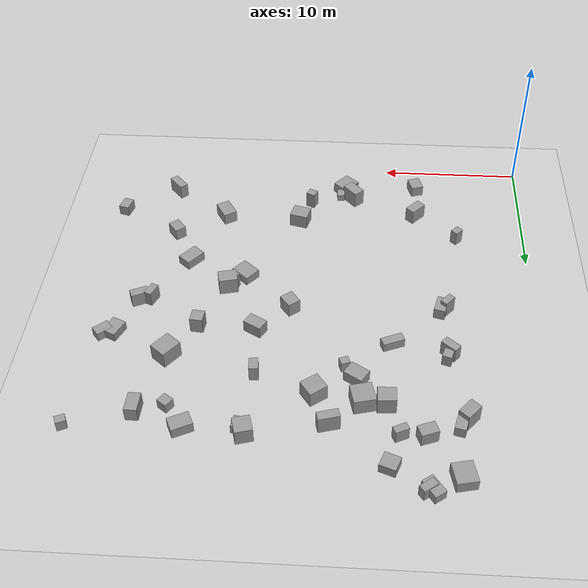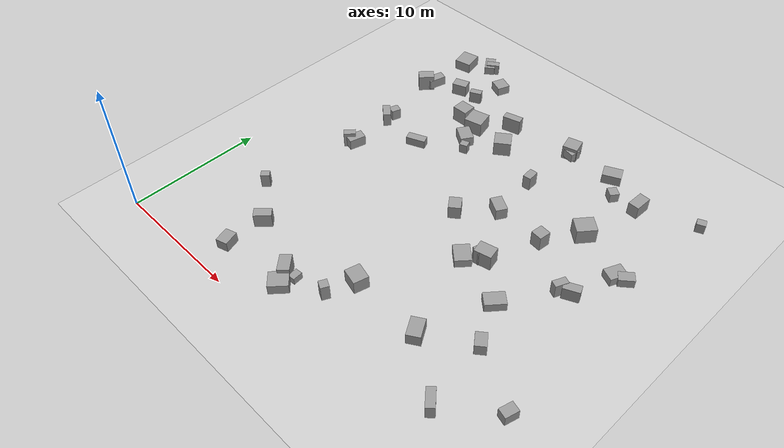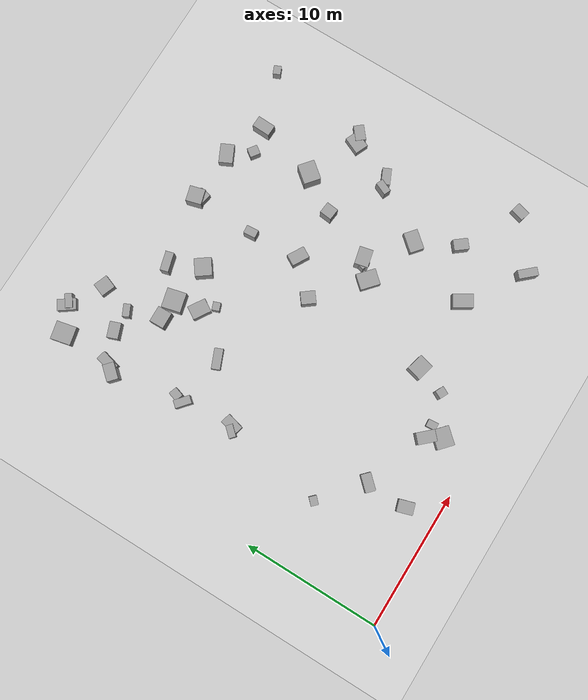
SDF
<sdf version="1.7">
 <world name="default">
  <model name="ground_plane">
   <static>1</static>
   <link name="link">
    <collision name="collision">
     <geometry><plane><normal>0 0 1</normal><size>100 100</size></plane></geometry>
     <surface><friction><ode><mu>100</mu><mu2>50</mu2></ode></friction></surface>
    </collision>
    <visual name="visual">
     <cast_shadows>0</cast_shadows>
     <geometry><plane><normal>0 0 1</normal><size>100 100</size></plane></geometry>
     <material>
      <script><uri>file://media/materials/scripts/gazebo.material</uri><name>Gazebo/Grey</name></script>
     </material>
    </visual>
   </link>
  </model>
  <model name="unit_box_2">
   <static>true</static>
   <pose>6.075183609601758 19.582829073267277 0.5 0 -0 326.4107492976476</pose>
   <link name="link">
    <inertial>
     <mass>1</mass>
     <inertia>
      <ixx>0.166667</ixx>
      <ixy>0</ixy>
      <ixz>0</ixz>
      <iyy>0.166667</iyy>
      <iyz>0</iyz>
      <izz>0.166667</izz>
     </inertia>
    </inertial>
    <collision name="collision">
     <geometry><box><size>0.6266694301505267 0.7147086828957209 0.8529961240803844</size></box></geometry>
    </collision>
    <visual name="visual">
     <geometry><box><size>0.6266694301505267 0.7147086828957209 0.8529961240803844</size></box></geometry>
     <material>
      <script><name>Gazebo/Grey</name><uri>file://media/materials/scripts/gazebo.material</uri></script>
     </material>
    </visual>
   </link>
  </model>
  <model name="unit_box_8">
   <static>true</static>
   <pose>13.526247484848206 25.072226725004846 0.5 0 -0 235.8880812467848</pose>
   <link name="link">
    <inertial>
     <mass>1</mass>
     <inertia>
      <ixx>0.166667</ixx>
      <ixy>0</ixy>
      <ixz>0</ixz>
      <iyy>0.166667</iyy>
      <iyz>0</iyz>
      <izz>0.166667</izz>
     </inertia>
    </inertial>
    <collision name="collision">
     <geometry><box><size>1.3976044286606641 0.6081127395378836 1.4346002221633043</size></box></geometry>
    </collision>
    <visual name="visual">
     <geometry><box><size>1.3976044286606641 0.6081127395378836 1.4346002221633043</size></box></geometry>
     <material>
      <script><name>Gazebo/Grey</name><uri>file://media/materials/scripts/gazebo.material</uri></script>
     </material>
    </visual>
   </link>
  </model>
  <model name="unit_box_19">
   <static>true</static>
   <pose>16.53977706462488 15.395428952619518 0.5 0 -0 292.82832951385666</pose>
   <link name="link">
    <inertial>
     <mass>1</mass>
     <inertia>
      <ixx>0.166667</ixx>
      <ixy>0</ixy>
      <ixz>0</ixz>
      <iyy>0.166667</iyy>
      <iyz>0</iyz>
      <izz>0.166667</izz>
     </inertia>
    </inertial>
    <collision name="collision">
     <geometry><box><size>0.9097543581399401 1.0486898294674742 1.058557427915837</size></box></geometry>
    </collision>
    <visual name="visual">
     <geometry><box><size>0.9097543581399401 1.0486898294674742 1.058557427915837</size></box></geometry>
     <material>
      <script><name>Gazebo/Grey</name><uri>file://media/materials/scripts/gazebo.material</uri></script>
     </material>
    </visual>
   </link>
  </model>
  <model name="unit_box_21">
   <static>true</static>
   <pose>26.06764423855877 3.290163727536026 0.5 0 -0 19.58643026135544</pose>
   <link name="link">
    <inertial>
     <mass>1</mass>
     <inertia>
      <ixx>0.166667</ixx>
      <ixy>0</ixy>
      <ixz>0</ixz>
      <iyy>0.166667</iyy>
      <iyz>0</iyz>
      <izz>0.166667</izz>
     </inertia>
    </inertial>
    <collision name="collision">
     <geometry><box><size>0.6197711131338078 1.4030050128848504 1.08956549549722</size></box></geometry>
    </collision>
    <visual name="visual">
     <geometry><box><size>0.6197711131338078 1.4030050128848504 1.08956549549722</size></box></geometry>
     <material>
      <script><name>Gazebo/Grey</name><uri>file://media/materials/scripts/gazebo.material</uri></script>
     </material>
    </visual>
   </link>
  </model>
  <model name="unit_box_27">
   <static>true</static>
   <pose>18.694011206480987 17.537227984825684 0.5 0 -0 156.56091539982643</pose>
   <link name="link">
    <inertial>
     <mass>1</mass>
     <inertia>
      <ixx>0.166667</ixx>
      <ixy>0</ixy>
      <ixz>0</ixz>
      <iyy>0.166667</iyy>
      <iyz>0</iyz>
      <izz>0.166667</izz>
     </inertia>
    </inertial>
    <collision name="collision">
     <geometry><box><size>1.3051033232458376 0.8619676094807414 0.9028728992414216</size></box></geometry>
    </collision>
    <visual name="visual">
     <geometry><box><size>1.3051033232458376 0.8619676094807414 0.9028728992414216</size></box></geometry>
     <material>
      <script><name>Gazebo/Grey</name><uri>file://media/materials/scripts/gazebo.material</uri></script>
     </material>
    </visual>
   </link>
  </model>
  <model name="unit_box_28">
   <static>true</static>
   <pose>7.335855545737282 29.440695560788072 0.5 0 -0 198.54745181263667</pose>
   <link name="link">
    <inertial>
     <mass>1</mass>
     <inertia>
      <ixx>0.166667</ixx>
      <ixy>0</ixy>
      <ixz>0</ixz>
      <iyy>0.166667</iyy>
      <iyz>0</iyz>
      <izz>0.166667</izz>
     </inertia>
    </inertial>
    <collision name="collision">
     <geometry><box><size>0.8034991458267305 1.3305237800313559 0.652747012599675</size></box></geometry>
    </collision>
    <visual name="visual">
     <geometry><box><size>0.8034991458267305 1.3305237800313559 0.652747012599675</size></box></geometry>
     <material>
      <script><name>Gazebo/Grey</name><uri>file://media/materials/scripts/gazebo.material</uri></script>
     </material>
    </visual>
   </link>
  </model>
  <model name="unit_box_37">
   <static>true</static>
   <pose>25.470562061039942 24.607845796192144 0.5 0 -0 240.29601368140607</pose>
   <link name="link">
    <inertial>
     <mass>1</mass>
     <inertia>
      <ixx>0.166667</ixx>
      <ixy>0</ixy>
      <ixz>0</ixz>
      <iyy>0.166667</iyy>
      <iyz>0</iyz>
      <izz>0.166667</izz>
     </inertia>
    </inertial>
    <collision name="collision">
     <geometry><box><size>1.344375268644443 0.8213663942201596 1.02014301659462</size></box></geometry>
    </collision>
    <visual name="visual">
     <geometry><box><size>1.344375268644443 0.8213663942201596 1.02014301659462</size></box></geometry>
     <material>
      <script><name>Gazebo/Grey</name><uri>file://media/materials/scripts/gazebo.material</uri></script>
     </material>
    </visual>
   </link>
  </model>
  <model name="unit_box_39">
   <static>true</static>
   <pose>16.438265275340584 6.3050185560217 0.5 0 -0 172.53721843498602</pose>
   <link name="link">
    <inertial>
     <mass>1</mass>
     <inertia>
      <ixx>0.166667</ixx>
      <ixy>0</ixy>
      <ixz>0</ixz>
      <iyy>0.166667</iyy>
      <iyz>0</iyz>
      <izz>0.166667</izz>
     </inertia>
    </inertial>
    <collision name="collision">
     <geometry><box><size>1.2911400543631473 1.1213946423509804 1.045349994574835</size></box></geometry>
    </collision>
    <visual name="visual">
     <geometry><box><size>1.2911400543631473 1.1213946423509804 1.045349994574835</size></box></geometry>
     <material>
      <script><name>Gazebo/Grey</name><uri>file://media/materials/scripts/gazebo.material</uri></script>
     </material>
    </visual>
   </link>
  </model>
  <model name="unit_box_42">
   <static>true</static>
   <pose>21.00234367478032 13.590694557570458 0.5 0 -0 345.80303984147434</pose>
   <link name="link">
    <inertial>
     <mass>1</mass>
     <inertia>
      <ixx>0.166667</ixx>
      <ixy>0</ixy>
      <ixz>0</ixz>
      <iyy>0.166667</iyy>
      <iyz>0</iyz>
      <izz>0.166667</izz>
     </inertia>
    </inertial>
    <collision name="collision">
     <geometry><box><size>1.2975623628611703 0.9901267232153436 1.3873004660296702</size></box></geometry>
    </collision>
    <visual name="visual">
     <geometry><box><size>1.2975623628611703 0.9901267232153436 1.3873004660296702</size></box></geometry>
     <material>
      <script><name>Gazebo/Grey</name><uri>file://media/materials/scripts/gazebo.material</uri></script>
     </material>
    </visual>
   </link>
  </model>
  <model name="unit_box_44">
   <static>true</static>
   <pose>22.556486633813087 17.378842252137304 0.5 0 -0 215.09612472012793</pose>
   <link name="link">
    <inertial>
     <mass>1</mass>
     <inertia>
      <ixx>0.166667</ixx>
      <ixy>0</ixy>
      <ixz>0</ixz>
      <iyy>0.166667</iyy>
      <iyz>0</iyz>
      <izz>0.166667</izz>
     </inertia>
    </inertial>
    <collision name="collision">
     <geometry><box><size>0.9052570733445651 0.8579701126151802 1.2587844239508659</size></box></geometry>
    </collision>
    <visual name="visual">
     <geometry><box><size>0.9052570733445651 0.8579701126151802 1.2587844239508659</size></box></geometry>
     <material>
      <script><name>Gazebo/Grey</name><uri>file://media/materials/scripts/gazebo.material</uri></script>
     </material>
    </visual>
   </link>
  </model>
  <model name="unit_box_46">
   <static>true</static>
   <pose>20.621133301253238 13.359679039255852 0.5 0 -0 51.564276295134206</pose>
   <link name="link">
    <inertial>
     <mass>1</mass>
     <inertia>
      <ixx>0.166667</ixx>
      <ixy>0</ixy>
      <ixz>0</ixz>
      <iyy>0.166667</iyy>
      <iyz>0</iyz>
      <izz>0.166667</izz>
     </inertia>
    </inertial>
    <collision name="collision">
     <geometry><box><size>0.5519025088118472 0.6839269735951289 1.197632844459171</size></box></geometry>
    </collision>
    <visual name="visual">
     <geometry><box><size>0.5519025088118472 0.6839269735951289 1.197632844459171</size></box></geometry>
     <material>
      <script><name>Gazebo/Grey</name><uri>file://media/materials/scripts/gazebo.material</uri></script>
     </material>
    </visual>
   </link>
  </model>
  <model name="unit_box_47">
   <static>true</static>
   <pose>5.556567994245555 28.48252787007317 0.5 0 -0 118.02403618140033</pose>
   <link name="link">
    <inertial>
     <mass>1</mass>
     <inertia>
      <ixx>0.166667</ixx>
      <ixy>0</ixy>
      <ixz>0</ixz>
      <iyy>0.166667</iyy>
      <iyz>0</iyz>
      <izz>0.166667</izz>
     </inertia>
    </inertial>
    <collision name="collision">
     <geometry><box><size>1.4624417969835561 1.3223446347227843 0.8082423349898079</size></box></geometry>
    </collision>
    <visual name="visual">
     <geometry><box><size>1.4624417969835561 1.3223446347227843 0.8082423349898079</size></box></geometry>
     <material>
      <script><name>Gazebo/Grey</name><uri>file://media/materials/scripts/gazebo.material</uri></script>
     </material>
    </visual>
   </link>
  </model>
  <model name="unit_box_48">
   <static>true</static>
   <pose>18.606294316136044 25.97861340103325 0.5 0 -0 67.81229950261451</pose>
   <link name="link">
    <inertial>
     <mass>1</mass>
     <inertia>
      <ixx>0.166667</ixx>
      <ixy>0</ixy>
      <ixz>0</ixz>
      <iyy>0.166667</iyy>
      <iyz>0</iyz>
      <izz>0.166667</izz>
     </inertia>
    </inertial>
    <collision name="collision">
     <geometry><box><size>1.1360610954181491 1.129243081194229 1.2102592617413017</size></box></geometry>
    </collision>
    <visual name="visual">
     <geometry><box><size>1.1360610954181491 1.129243081194229 1.2102592617413017</size></box></geometry>
     <material>
      <script><name>Gazebo/Grey</name><uri>file://media/materials/scripts/gazebo.material</uri></script>
     </material>
    </visual>
   </link>
  </model>
  <model name="unit_box_52">
   <static>true</static>
   <pose>27.978531176537942 18.36319179525745 0.5 0 -0 107.96689318713497</pose>
   <link name="link">
    <inertial>
     <mass>1</mass>
     <inertia>
      <ixx>0.166667</ixx>
      <ixy>0</ixy>
      <ixz>0</ixz>
      <iyy>0.166667</iyy>
      <iyz>0</iyz>
      <izz>0.166667</izz>
     </inertia>
    </inertial>
    <collision name="collision">
     <geometry><box><size>1.2970123926587727 0.9932873523759735 0.6435696410689539</size></box></geometry>
    </collision>
    <visual name="visual">
     <geometry><box><size>1.2970123926587727 0.9932873523759735 0.6435696410689539</size></box></geometry>
     <material>
      <script><name>Gazebo/Grey</name><uri>file://media/materials/scripts/gazebo.material</uri></script>
     </material>
    </visual>
   </link>
  </model>
  <model name="unit_box_55">
   <static>true</static>
   <pose>24.22568948439428 20.044661358361317 0.5 0 -0 22.88305894017677</pose>
   <link name="link">
    <inertial>
     <mass>1</mass>
     <inertia>
      <ixx>0.166667</ixx>
      <ixy>0</ixy>
      <ixz>0</ixz>
      <iyy>0.166667</iyy>
      <iyz>0</iyz>
      <izz>0.166667</izz>
     </inertia>
    </inertial>
    <collision name="collision">
     <geometry><box><size>1.4568319885254337 1.241812268292108 1.3092068896481828</size></box></geometry>
    </collision>
    <visual name="visual">
     <geometry><box><size>1.4568319885254337 1.241812268292108 1.3092068896481828</size></box></geometry>
     <material>
      <script><name>Gazebo/Grey</name><uri>file://media/materials/scripts/gazebo.material</uri></script>
     </material>
    </visual>
   </link>
  </model>
  <model name="unit_box_58">
   <static>true</static>
   <pose>4.909568699743126 7.80604900535711 0.5 0 -0 76.1902532584364</pose>
   <link name="link">
    <inertial>
     <mass>1</mass>
     <inertia>
      <ixx>0.166667</ixx>
      <ixy>0</ixy>
      <ixz>0</ixz>
      <iyy>0.166667</iyy>
      <iyz>0</iyz>
      <izz>0.166667</izz>
     </inertia>
    </inertial>
    <collision name="collision">
     <geometry><box><size>0.649773561496556 0.5390885309124063 1.094235588867663</size></box></geometry>
    </collision>
    <visual name="visual">
     <geometry><box><size>0.649773561496556 0.5390885309124063 1.094235588867663</size></box></geometry>
     <material>
      <script><name>Gazebo/Grey</name><uri>file://media/materials/scripts/gazebo.material</uri></script>
     </material>
    </visual>
   </link>
  </model>
  <model name="unit_box_59">
   <static>true</static>
   <pose>15.692025174586803 4.190637754242118 0.5 0 -0 293.28560197946393</pose>
   <link name="link">
    <inertial>
     <mass>1</mass>
     <inertia>
      <ixx>0.166667</ixx>
      <ixy>0</ixy>
      <ixz>0</ixz>
      <iyy>0.166667</iyy>
      <iyz>0</iyz>
      <izz>0.166667</izz>
     </inertia>
    </inertial>
    <collision name="collision">
     <geometry><box><size>0.6069787007011861 0.6516881781433638 1.3678282830183588</size></box></geometry>
    </collision>
    <visual name="visual">
     <geometry><box><size>0.6069787007011861 0.6516881781433638 1.3678282830183588</size></box></geometry>
     <material>
      <script><name>Gazebo/Grey</name><uri>file://media/materials/scripts/gazebo.material</uri></script>
     </material>
    </visual>
   </link>
  </model>
  <model name="unit_box_63">
   <static>true</static>
   <pose>7.806829698224661 2.3042562962078392 0.5 0 -0 163.6643687447556</pose>
   <link name="link">
    <inertial>
     <mass>1</mass>
     <inertia>
      <ixx>0.166667</ixx>
      <ixy>0</ixy>
      <ixz>0</ixz>
      <iyy>0.166667</iyy>
      <iyz>0</iyz>
      <izz>0.166667</izz>
     </inertia>
    </inertial>
    <collision name="collision">
     <geometry><box><size>0.8742000349347955 1.1291085135058703 0.8023658930573554</size></box></geometry>
    </collision>
    <visual name="visual">
     <geometry><box><size>0.8742000349347955 1.1291085135058703 0.8023658930573554</size></box></geometry>
     <material>
      <script><name>Gazebo/Grey</name><uri>file://media/materials/scripts/gazebo.material</uri></script>
     </material>
    </visual>
   </link>
  </model>
  <model name="unit_box_66">
   <static>true</static>
   <pose>19.876373113739263 12.538316822582296 0.5 0 -0 173.6412267765037</pose>
   <link name="link">
    <inertial>
     <mass>1</mass>
     <inertia>
      <ixx>0.166667</ixx>
      <ixy>0</ixy>
      <ixz>0</ixz>
      <iyy>0.166667</iyy>
      <iyz>0</iyz>
      <izz>0.166667</izz>
     </inertia>
    </inertial>
    <collision name="collision">
     <geometry><box><size>1.1748063741884576 1.436795250597953 0.6505656093072076</size></box></geometry>
    </collision>
    <visual name="visual">
     <geometry><box><size>1.1748063741884576 1.436795250597953 0.6505656093072076</size></box></geometry>
     <material>
      <script><name>Gazebo/Grey</name><uri>file://media/materials/scripts/gazebo.material</uri></script>
     </material>
    </visual>
   </link>
  </model>
  <model name="unit_box_68">
   <static>true</static>
   <pose>9.168438073694865 25.641140558621657 0.5 0 -0 160.6702565570846</pose>
   <link name="link">
    <inertial>
     <mass>1</mass>
     <inertia>
      <ixx>0.166667</ixx>
      <ixy>0</ixy>
      <ixz>0</ixz>
      <iyy>0.166667</iyy>
      <iyz>0</iyz>
      <izz>0.166667</izz>
     </inertia>
    </inertial>
    <collision name="collision">
     <geometry><box><size>0.9136162828608444 0.5092848872562229 0.9583333695756887</size></box></geometry>
    </collision>
    <visual name="visual">
     <geometry><box><size>0.9136162828608444 0.5092848872562229 0.9583333695756887</size></box></geometry>
     <material>
      <script><name>Gazebo/Grey</name><uri>file://media/materials/scripts/gazebo.material</uri></script>
     </material>
    </visual>
   </link>
  </model>
  <model name="unit_box_72">
   <static>true</static>
   <pose>7.870176105929808 5.313361313212241 0.5 0 -0 311.8350475576721</pose>
   <link name="link">
    <inertial>
     <mass>1</mass>
     <inertia>
      <ixx>0.166667</ixx>
      <ixy>0</ixy>
      <ixz>0</ixz>
      <iyy>0.166667</iyy>
      <iyz>0</iyz>
      <izz>0.166667</izz>
     </inertia>
    </inertial>
    <collision name="collision">
     <geometry><box><size>1.2782323731909977 0.7210206295488444 1.133837877895704</size></box></geometry>
    </collision>
    <visual name="visual">
     <geometry><box><size>1.2782323731909977 0.7210206295488444 1.133837877895704</size></box></geometry>
     <material>
      <script><name>Gazebo/Grey</name><uri>file://media/materials/scripts/gazebo.material</uri></script>
     </material>
    </visual>
   </link>
  </model>
  <model name="unit_box_74">
   <static>true</static>
   <pose>12.550211492582847 3.5400926782987483 0.5 0 -0 248.92730742739886</pose>
   <link name="link">
    <inertial>
     <mass>1</mass>
     <inertia>
      <ixx>0.166667</ixx>
      <ixy>0</ixy>
      <ixz>0</ixz>
      <iyy>0.166667</iyy>
      <iyz>0</iyz>
      <izz>0.166667</izz>
     </inertia>
    </inertial>
    <collision name="collision">
     <geometry><box><size>0.8389021791973853 1.3421751105045296 1.3646324285194171</size></box></geometry>
    </collision>
    <visual name="visual">
     <geometry><box><size>0.8389021791973853 1.3421751105045296 1.3646324285194171</size></box></geometry>
     <material>
      <script><name>Gazebo/Grey</name><uri>file://media/materials/scripts/gazebo.material</uri></script>
     </material>
    </visual>
   </link>
  </model>
  <model name="unit_box_83">
   <static>true</static>
   <pose>23.546734505923567 24.254876355479958 0.5 0 -0 117.18658827138174</pose>
   <link name="link">
    <inertial>
     <mass>1</mass>
     <inertia>
      <ixx>0.166667</ixx>
      <ixy>0</ixy>
      <ixz>0</ixz>
      <iyy>0.166667</iyy>
      <iyz>0</iyz>
      <izz>0.166667</izz>
     </inertia>
    </inertial>
    <collision name="collision">
     <geometry><box><size>0.6875270126272337 0.7481586872271153 0.7316958038379996</size></box></geometry>
    </collision>
    <visual name="visual">
     <geometry><box><size>0.6875270126272337 0.7481586872271153 0.7316958038379996</size></box></geometry>
     <material>
      <script><name>Gazebo/Grey</name><uri>file://media/materials/scripts/gazebo.material</uri></script>
     </material>
    </visual>
   </link>
  </model>
  <model name="unit_box_85">
   <static>true</static>
   <pose>5.4629197116767045 24.796719150428935 0.5 0 -0 335.8943174686914</pose>
   <link name="link">
    <inertial>
     <mass>1</mass>
     <inertia>
      <ixx>0.166667</ixx>
      <ixy>0</ixy>
      <ixz>0</ixz>
      <iyy>0.166667</iyy>
      <iyz>0</iyz>
      <izz>0.166667</izz>
     </inertia>
    </inertial>
    <collision name="collision">
     <geometry><box><size>0.7141914500547789 1.3961964106156284 0.7417155893022127</size></box></geometry>
    </collision>
    <visual name="visual">
     <geometry><box><size>0.7141914500547789 1.3961964106156284 0.7417155893022127</size></box></geometry>
     <material>
      <script><name>Gazebo/Grey</name><uri>file://media/materials/scripts/gazebo.material</uri></script>
     </material>
    </visual>
   </link>
  </model>
  <model name="unit_box_87">
   <static>true</static>
   <pose>12.683645403967681 20.507631737791044 0.5 0 -0 275.2442569944256</pose>
   <link name="link">
    <inertial>
     <mass>1</mass>
     <inertia>
      <ixx>0.166667</ixx>
      <ixy>0</ixy>
      <ixz>0</ixz>
      <iyy>0.166667</iyy>
      <iyz>0</iyz>
      <izz>0.166667</izz>
     </inertia>
    </inertial>
    <collision name="collision">
     <geometry><box><size>0.5430039512211714 0.6048291285440465 0.7673195144215575</size></box></geometry>
    </collision>
    <visual name="visual">
     <geometry><box><size>0.5430039512211714 0.6048291285440465 0.7673195144215575</size></box></geometry>
     <material>
      <script><name>Gazebo/Grey</name><uri>file://media/materials/scripts/gazebo.material</uri></script>
     </material>
    </visual>
   </link>
  </model>
  <model name="unit_box_89">
   <static>true</static>
   <pose>13.132192595485279 2.5319206112829704 0.5 0 -0 95.09129952546573</pose>
   <link name="link">
    <inertial>
     <mass>1</mass>
     <inertia>
      <ixx>0.166667</ixx>
      <ixy>0</ixy>
      <ixz>0</ixz>
      <iyy>0.166667</iyy>
      <iyz>0</iyz>
      <izz>0.166667</izz>
     </inertia>
    </inertial>
    <collision name="collision">
     <geometry><box><size>1.3989676282034784 1.2428125538502477 0.7582398263198261</size></box></geometry>
    </collision>
    <visual name="visual">
     <geometry><box><size>1.3989676282034784 1.2428125538502477 0.7582398263198261</size></box></geometry>
     <material>
      <script><name>Gazebo/Grey</name><uri>file://media/materials/scripts/gazebo.material</uri></script>
     </material>
    </visual>
   </link>
  </model>
  <model name="unit_box_107">
   <static>true</static>
   <pose>11.896602555117866 21.408017880659344 0.5 0 -0 246.0533327683534</pose>
   <link name="link">
    <inertial>
     <mass>1</mass>
     <inertia>
      <ixx>0.166667</ixx>
      <ixy>0</ixy>
      <ixz>0</ixz>
      <iyy>0.166667</iyy>
      <iyz>0</iyz>
      <izz>0.166667</izz>
     </inertia>
    </inertial>
    <collision name="collision">
     <geometry><box><size>1.0066742597315261 1.3410550901812412 0.7943802548569558</size></box></geometry>
    </collision>
    <visual name="visual">
     <geometry><box><size>1.0066742597315261 1.3410550901812412 0.7943802548569558</size></box></geometry>
     <material>
      <script><name>Gazebo/Grey</name><uri>file://media/materials/scripts/gazebo.material</uri></script>
     </material>
    </visual>
   </link>
  </model>
  <model name="unit_box_109">
   <static>true</static>
   <pose>7.632319863472432 29.438869301346628 0.5 0 -0 292.79471959877543</pose>
   <link name="link">
    <inertial>
     <mass>1</mass>
     <inertia>
      <ixx>0.166667</ixx>
      <ixy>0</ixy>
      <ixz>0</ixz>
      <iyy>0.166667</iyy>
      <iyz>0</iyz>
      <izz>0.166667</izz>
     </inertia>
    </inertial>
    <collision name="collision">
     <geometry><box><size>1.0206820450920233 0.5225910596196522 0.8746203777420581</size></box></geometry>
    </collision>
    <visual name="visual">
     <geometry><box><size>1.0206820450920233 0.5225910596196522 0.8746203777420581</size></box></geometry>
     <material>
      <script><name>Gazebo/Grey</name><uri>file://media/materials/scripts/gazebo.material</uri></script>
     </material>
    </visual>
   </link>
  </model>
  <model name="unit_box_112">
   <static>true</static>
   <pose>29.656487446707928 5.9010496040593665 0.5 0 -0 115.97595919735761</pose>
   <link name="link">
    <inertial>
     <mass>1</mass>
     <inertia>
      <ixx>0.166667</ixx>
      <ixy>0</ixy>
      <ixz>0</ixz>
      <iyy>0.166667</iyy>
      <iyz>0</iyz>
      <izz>0.166667</izz>
     </inertia>
    </inertial>
    <collision name="collision">
     <geometry><box><size>0.7307085256808161 0.9948362396580696 0.7853850949954407</size></box></geometry>
    </collision>
    <visual name="visual">
     <geometry><box><size>0.7307085256808161 0.9948362396580696 0.7853850949954407</size></box></geometry>
     <material>
      <script><name>Gazebo/Grey</name><uri>file://media/materials/scripts/gazebo.material</uri></script>
     </material>
    </visual>
   </link>
  </model>
  <model name="unit_box_113">
   <static>true</static>
   <pose>11.486036195296485 23.203189929999944 0.5 0 -0 278.271588610162</pose>
   <link name="link">
    <inertial>
     <mass>1</mass>
     <inertia>
      <ixx>0.166667</ixx>
      <ixy>0</ixy>
      <ixz>0</ixz>
      <iyy>0.166667</iyy>
      <iyz>0</iyz>
      <izz>0.166667</izz>
     </inertia>
    </inertial>
    <collision name="collision">
     <geometry><box><size>1.3932249065703974 1.4167858023454192 1.2041795451049215</size></box></geometry>
    </collision>
    <visual name="visual">
     <geometry><box><size>1.3932249065703974 1.4167858023454192 1.2041795451049215</size></box></geometry>
     <material>
      <script><name>Gazebo/Grey</name><uri>file://media/materials/scripts/gazebo.material</uri></script>
     </material>
    </visual>
   </link>
  </model>
  <model name="unit_box_125">
   <static>true</static>
   <pose>22.01560813307247 6.133653222518596 0.5 0 -0 229.8847880018155</pose>
   <link name="link">
    <inertial>
     <mass>1</mass>
     <inertia>
      <ixx>0.166667</ixx>
      <ixy>0</ixy>
      <ixz>0</ixz>
      <iyy>0.166667</iyy>
      <iyz>0</iyz>
      <izz>0.166667</izz>
     </inertia>
    </inertial>
    <collision name="collision">
     <geometry><box><size>0.9825185737126813 1.4477548267670501 0.8868998208863914</size></box></geometry>
    </collision>
    <visual name="visual">
     <geometry><box><size>0.9825185737126813 1.4477548267670501 0.8868998208863914</size></box></geometry>
     <material>
      <script><name>Gazebo/Grey</name><uri>file://media/materials/scripts/gazebo.material</uri></script>
     </material>
    </visual>
   </link>
  </model>
  <model name="unit_box_128">
   <static>true</static>
   <pose>18.836117199367166 25.65467049783127 0.5 0 -0 301.4114053986779</pose>
   <link name="link">
    <inertial>
     <mass>1</mass>
     <inertia>
      <ixx>0.166667</ixx>
      <ixy>0</ixy>
      <ixz>0</ixz>
      <iyy>0.166667</iyy>
      <iyz>0</iyz>
      <izz>0.166667</izz>
     </inertia>
    </inertial>
    <collision name="collision">
     <geometry><box><size>0.875105563854358 0.8437633055790543 0.6802295545031973</size></box></geometry>
    </collision>
    <visual name="visual">
     <geometry><box><size>0.875105563854358 0.8437633055790543 0.6802295545031973</size></box></geometry>
     <material>
      <script><name>Gazebo/Grey</name><uri>file://media/materials/scripts/gazebo.material</uri></script>
     </material>
    </visual>
   </link>
  </model>
  <model name="unit_box_130">
   <static>true</static>
   <pose>7.550567682638743 25.611670640487645 0.5 0 -0 295.6708477054124</pose>
   <link name="link">
    <inertial>
     <mass>1</mass>
     <inertia>
      <ixx>0.166667</ixx>
      <ixy>0</ixy>
      <ixz>0</ixz>
      <iyy>0.166667</iyy>
      <iyz>0</iyz>
      <izz>0.166667</izz>
     </inertia>
    </inertial>
    <collision name="collision">
     <geometry><box><size>1.1482430511585462 0.8051089116418404 0.9612190299499431</size></box></geometry>
    </collision>
    <visual name="visual">
     <geometry><box><size>1.1482430511585462 0.8051089116418404 0.9612190299499431</size></box></geometry>
     <material>
      <script><name>Gazebo/Grey</name><uri>file://media/materials/scripts/gazebo.material</uri></script>
     </material>
    </visual>
   </link>
  </model>
  <model name="unit_box_131">
   <static>true</static>
   <pose>5.917528516432675 15.020304452192846 0.5 0 -0 313.42822900021173</pose>
   <link name="link">
    <inertial>
     <mass>1</mass>
     <inertia>
      <ixx>0.166667</ixx>
      <ixy>0</ixy>
      <ixz>0</ixz>
      <iyy>0.166667</iyy>
      <iyz>0</iyz>
      <izz>0.166667</izz>
     </inertia>
    </inertial>
    <collision name="collision">
     <geometry><box><size>0.5000157201728738 0.9028638048602278 1.3932904022124322</size></box></geometry>
    </collision>
    <visual name="visual">
     <geometry><box><size>0.5000157201728738 0.9028638048602278 1.3932904022124322</size></box></geometry>
     <material>
      <script><name>Gazebo/Grey</name><uri>file://media/materials/scripts/gazebo.material</uri></script>
     </material>
    </visual>
   </link>
  </model>
  <model name="unit_box_139">
   <static>true</static>
   <pose>6.330433135278561 15.224635286154978 0.5 0 -0 317.0468038294192</pose>
   <link name="link">
    <inertial>
     <mass>1</mass>
     <inertia>
      <ixx>0.166667</ixx>
      <ixy>0</ixy>
      <ixz>0</ixz>
      <iyy>0.166667</iyy>
      <iyz>0</iyz>
      <izz>0.166667</izz>
     </inertia>
    </inertial>
    <collision name="collision">
     <geometry><box><size>0.7762704948614222 1.270986643665274 0.8129457318329306</size></box></geometry>
    </collision>
    <visual name="visual">
     <geometry><box><size>0.7762704948614222 1.270986643665274 0.8129457318329306</size></box></geometry>
     <material>
      <script><name>Gazebo/Grey</name><uri>file://media/materials/scripts/gazebo.material</uri></script>
     </material>
    </visual>
   </link>
  </model>
  <model name="unit_box_142">
   <static>true</static>
   <pose>26.869148401194572 15.255166039398006 0.5 0 -0 287.88921963538047</pose>
   <link name="link">
    <inertial>
     <mass>1</mass>
     <inertia>
      <ixx>0.166667</ixx>
      <ixy>0</ixy>
      <ixz>0</ixz>
      <iyy>0.166667</iyy>
      <iyz>0</iyz>
      <izz>0.166667</izz>
     </inertia>
    </inertial>
    <collision name="collision">
     <geometry><box><size>0.6333349245550113 1.2090756273450847 1.0199392845840778</size></box></geometry>
    </collision>
    <visual name="visual">
     <geometry><box><size>0.6333349245550113 1.2090756273450847 1.0199392845840778</size></box></geometry>
     <material>
      <script><name>Gazebo/Grey</name><uri>file://media/materials/scripts/gazebo.material</uri></script>
     </material>
    </visual>
   </link>
  </model>
  <model name="unit_box_144">
   <static>true</static>
   <pose>23.899415188577343 11.219844655473864 0.5 0 -0 263.19148986507054</pose>
   <link name="link">
    <inertial>
     <mass>1</mass>
     <inertia>
      <ixx>0.166667</ixx>
      <ixy>0</ixy>
      <ixz>0</ixz>
      <iyy>0.166667</iyy>
      <iyz>0</iyz>
      <izz>0.166667</izz>
     </inertia>
    </inertial>
    <collision name="collision">
     <geometry><box><size>1.018915573938532 1.474167889735236 0.671039882088707</size></box></geometry>
    </collision>
    <visual name="visual">
     <geometry><box><size>1.018915573938532 1.474167889735236 0.671039882088707</size></box></geometry>
     <material>
      <script><name>Gazebo/Grey</name><uri>file://media/materials/scripts/gazebo.material</uri></script>
     </material>
    </visual>
   </link>
  </model>
  <model name="unit_box_145">
   <static>true</static>
   <pose>29.590126114767003 26.040796069744864 0.5 0 -0 341.2717016155773</pose>
   <link name="link">
    <inertial>
     <mass>1</mass>
     <inertia>
      <ixx>0.166667</ixx>
      <ixy>0</ixy>
      <ixz>0</ixz>
      <iyy>0.166667</iyy>
      <iyz>0</iyz>
      <izz>0.166667</izz>
     </inertia>
    </inertial>
    <collision name="collision">
     <geometry><box><size>0.559253368037819 0.6517600848146741 0.7604259447626311</size></box></geometry>
    </collision>
    <visual name="visual">
     <geometry><box><size>0.559253368037819 0.6517600848146741 0.7604259447626311</size></box></geometry>
     <material>
      <script><name>Gazebo/Grey</name><uri>file://media/materials/scripts/gazebo.material</uri></script>
     </material>
    </visual>
   </link>
  </model>
  <model name="unit_box_152">
   <static>true</static>
   <pose>9.812867933298712 27.931194790072517 0.5 0 -0 337.3571876032492</pose>
   <link name="link">
    <inertial>
     <mass>1</mass>
     <inertia>
      <ixx>0.166667</ixx>
      <ixy>0</ixy>
      <ixz>0</ixz>
      <iyy>0.166667</iyy>
      <iyz>0</iyz>
      <izz>0.166667</izz>
     </inertia>
    </inertial>
    <collision name="collision">
     <geometry><box><size>1.0066572786173553 1.0712401626691173 0.6888949006507155</size></box></geometry>
    </collision>
    <visual name="visual">
     <geometry><box><size>1.0066572786173553 1.0712401626691173 0.6888949006507155</size></box></geometry>
     <material>
      <script><name>Gazebo/Grey</name><uri>file://media/materials/scripts/gazebo.material</uri></script>
     </material>
    </visual>
   </link>
  </model>
  <model name="unit_box_157">
   <static>true</static>
   <pose>28.698837066879264 18.550113613903775 0.5 0 -0 336.8437599966882</pose>
   <link name="link">
    <inertial>
     <mass>1</mass>
     <inertia>
      <ixx>0.166667</ixx>
      <ixy>0</ixy>
      <ixz>0</ixz>
      <iyy>0.166667</iyy>
      <iyz>0</iyz>
      <izz>0.166667</izz>
     </inertia>
    </inertial>
    <collision name="collision">
     <geometry><box><size>1.1145328749815269 0.7487534302867812 0.6584356047786017</size></box></geometry>
    </collision>
    <visual name="visual">
     <geometry><box><size>1.1145328749815269 0.7487534302867812 0.6584356047786017</size></box></geometry>
     <material>
      <script><name>Gazebo/Grey</name><uri>file://media/materials/scripts/gazebo.material</uri></script>
     </material>
    </visual>
   </link>
  </model>
  <model name="unit_box_159">
   <static>true</static>
   <pose>5.002460557338331 24.176450906706066 0.5 0 -0 14.982075310079882</pose>
   <link name="link">
    <inertial>
     <mass>1</mass>
     <inertia>
      <ixx>0.166667</ixx>
      <ixy>0</ixy>
      <ixz>0</ixz>
      <iyy>0.166667</iyy>
      <iyz>0</iyz>
      <izz>0.166667</izz>
     </inertia>
    </inertial>
    <collision name="collision">
     <geometry><box><size>0.8183347995863939 1.2171246823680364 1.467932431268916</size></box></geometry>
    </collision>
    <visual name="visual">
     <geometry><box><size>0.8183347995863939 1.2171246823680364 1.467932431268916</size></box></geometry>
     <material>
      <script><name>Gazebo/Grey</name><uri>file://media/materials/scripts/gazebo.material</uri></script>
     </material>
    </visual>
   </link>
  </model>
  <model name="unit_box_160">
   <static>true</static>
   <pose>9.996931141381502 23.31022823566755 0.5 0 -0 92.70508651702883</pose>
   <link name="link">
    <inertial>
     <mass>1</mass>
     <inertia>
      <ixx>0.166667</ixx>
      <ixy>0</ixy>
      <ixz>0</ixz>
      <iyy>0.166667</iyy>
      <iyz>0</iyz>
      <izz>0.166667</izz>
     </inertia>
    </inertial>
    <collision name="collision">
     <geometry><box><size>1.0550643774979047 1.1884779508322314 1.372744891983921</size></box></geometry>
    </collision>
    <visual name="visual">
     <geometry><box><size>1.0550643774979047 1.1884779508322314 1.372744891983921</size></box></geometry>
     <material>
      <script><name>Gazebo/Grey</name><uri>file://media/materials/scripts/gazebo.material</uri></script>
     </material>
    </visual>
   </link>
  </model>
  <model name="unit_box_173">
   <static>true</static>
   <pose>26.07823851062161 15.028509818199808 0.5 0 -0 169.23473396470624</pose>
   <link name="link">
    <inertial>
     <mass>1</mass>
     <inertia>
      <ixx>0.166667</ixx>
      <ixy>0</ixy>
      <ixz>0</ixz>
      <iyy>0.166667</iyy>
      <iyz>0</iyz>
      <izz>0.166667</izz>
     </inertia>
    </inertial>
    <collision name="collision">
     <geometry><box><size>0.5408485653375097 0.984113753336311 1.0934948038973025</size></box></geometry>
    </collision>
    <visual name="visual">
     <geometry><box><size>0.5408485653375097 0.984113753336311 1.0934948038973025</size></box></geometry>
     <material>
      <script><name>Gazebo/Grey</name><uri>file://media/materials/scripts/gazebo.material</uri></script>
     </material>
    </visual>
   </link>
  </model>
  <model name="unit_box_174">
   <static>true</static>
   <pose>18.425961826737066 21.258089555080268 0.5 0 -0 9.508785178960748</pose>
   <link name="link">
    <inertial>
     <mass>1</mass>
     <inertia>
      <ixx>0.166667</ixx>
      <ixy>0</ixy>
      <ixz>0</ixz>
      <iyy>0.166667</iyy>
      <iyz>0</iyz>
      <izz>0.166667</izz>
     </inertia>
    </inertial>
    <collision name="collision">
     <geometry><box><size>0.6024259933046437 0.8953924630323026 1.136696403850211</size></box></geometry>
    </collision>
    <visual name="visual">
     <geometry><box><size>0.6024259933046437 0.8953924630323026 1.136696403850211</size></box></geometry>
     <material>
      <script><name>Gazebo/Grey</name><uri>file://media/materials/scripts/gazebo.material</uri></script>
     </material>
    </visual>
   </link>
  </model>
  <model name="unit_box_180">
   <static>true</static>
   <pose>14.530354712846588 22.7507153193256 0.5 0 -0 93.30667819292646</pose>
   <link name="link">
    <inertial>
     <mass>1</mass>
     <inertia>
      <ixx>0.166667</ixx>
      <ixy>0</ixy>
      <ixz>0</ixz>
      <iyy>0.166667</iyy>
      <iyz>0</iyz>
      <izz>0.166667</izz>
     </inertia>
    </inertial>
    <collision name="collision">
     <geometry><box><size>1.2195175039463684 1.2835195216146467 1.2270854227805845</size></box></geometry>
    </collision>
    <visual name="visual">
     <geometry><box><size>1.2195175039463684 1.2835195216146467 1.2270854227805845</size></box></geometry>
     <material>
      <script><name>Gazebo/Grey</name><uri>file://media/materials/scripts/gazebo.material</uri></script>
     </material>
    </visual>
   </link>
  </model>
  <model name="unit_box_183">
   <static>true</static>
   <pose>9.623339519894685 18.49039646548639 0.5 0 -0 11.392434613045603</pose>
   <link name="link">
    <inertial>
     <mass>1</mass>
     <inertia>
      <ixx>0.166667</ixx>
      <ixy>0</ixy>
      <ixz>0</ixz>
      <iyy>0.166667</iyy>
      <iyz>0</iyz>
      <izz>0.166667</izz>
     </inertia>
    </inertial>
    <collision name="collision">
     <geometry><box><size>0.6284659380113903 1.4762448684026812 0.6710180497125077</size></box></geometry>
    </collision>
    <visual name="visual">
     <geometry><box><size>0.6284659380113903 1.4762448684026812 0.6710180497125077</size></box></geometry>
     <material>
      <script><name>Gazebo/Grey</name><uri>file://media/materials/scripts/gazebo.material</uri></script>
     </material>
    </visual>
   </link>
  </model>
  <model name="unit_box_186">
   <static>true</static>
   <pose>25.40565250720956 8.2787246099669 0.5 0 -0 145.18655733110026</pose>
   <link name="link">
    <inertial>
     <mass>1</mass>
     <inertia>
      <ixx>0.166667</ixx>
      <ixy>0</ixy>
      <ixz>0</ixz>
      <iyy>0.166667</iyy>
      <iyz>0</iyz>
      <izz>0.166667</izz>
     </inertia>
    </inertial>
    <collision name="collision">
     <geometry><box><size>0.7991368521575567 1.0635225279164806 0.8924905127908299</size></box></geometry>
    </collision>
    <visual name="visual">
     <geometry><box><size>0.7991368521575567 1.0635225279164806 0.8924905127908299</size></box></geometry>
     <material>
      <script><name>Gazebo/Grey</name><uri>file://media/materials/scripts/gazebo.material</uri></script>
     </material>
    </visual>
   </link>
  </model>
  <model name="unit_box_189">
   <static>true</static>
   <pose>22.388369912904864 25.806790360117184 0.5 0 -0 294.18854130238185</pose>
   <link name="link">
    <inertial>
     <mass>1</mass>
     <inertia>
      <ixx>0.166667</ixx>
      <ixy>0</ixy>
      <ixz>0</ixz>
      <iyy>0.166667</iyy>
      <iyz>0</iyz>
      <izz>0.166667</izz>
     </inertia>
    </inertial>
    <collision name="collision">
     <geometry><box><size>0.9967237030578089 1.3895540581918056 0.7636176936647062</size></box></geometry>
    </collision>
    <visual name="visual">
     <geometry><box><size>0.9967237030578089 1.3895540581918056 0.7636176936647062</size></box></geometry>
     <material>
      <script><name>Gazebo/Grey</name><uri>file://media/materials/scripts/gazebo.material</uri></script>
     </material>
    </visual>
   </link>
  </model>
  <model name="unit_box_191">
   <static>true</static>
   <pose>5.874640002697376 18.904065972607746 0.5 0 -0 217.63472705818077</pose>
   <link name="link">
    <inertial>
     <mass>1</mass>
     <inertia>
      <ixx>0.166667</ixx>
      <ixy>0</ixy>
      <ixz>0</ixz>
      <iyy>0.166667</iyy>
      <iyz>0</iyz>
      <izz>0.166667</izz>
     </inertia>
    </inertial>
    <collision name="collision">
     <geometry><box><size>0.5835098125370122 1.177813172906663 1.107564137982621</size></box></geometry>
    </collision>
    <visual name="visual">
     <geometry><box><size>0.5835098125370122 1.177813172906663 1.107564137982621</size></box></geometry>
     <material>
      <script><name>Gazebo/Grey</name><uri>file://media/materials/scripts/gazebo.material</uri></script>
     </material>
    </visual>
   </link>
  </model>
  <model name="unit_box_193">
   <static>true</static>
   <pose>13.514200719153344 3.5819142421772483 0.5 0 -0 53.495395611305774</pose>
   <link name="link">
    <inertial>
     <mass>1</mass>
     <inertia>
      <ixx>0.166667</ixx>
      <ixy>0</ixy>
      <ixz>0</ixz>
      <iyy>0.166667</iyy>
      <iyz>0</iyz>
      <izz>0.166667</izz>
     </inertia>
    </inertial>
    <collision name="collision">
     <geometry><box><size>0.5389927104760909 0.7291918105937765 0.5232998749335152</size></box></geometry>
    </collision>
    <visual name="visual">
     <geometry><box><size>0.5389927104760909 0.7291918105937765 0.5232998749335152</size></box></geometry>
     <material>
      <script><name>Gazebo/Grey</name><uri>file://media/materials/scripts/gazebo.material</uri></script>
     </material>
    </visual>
   </link>
  </model>
 </world>
</sdf>
